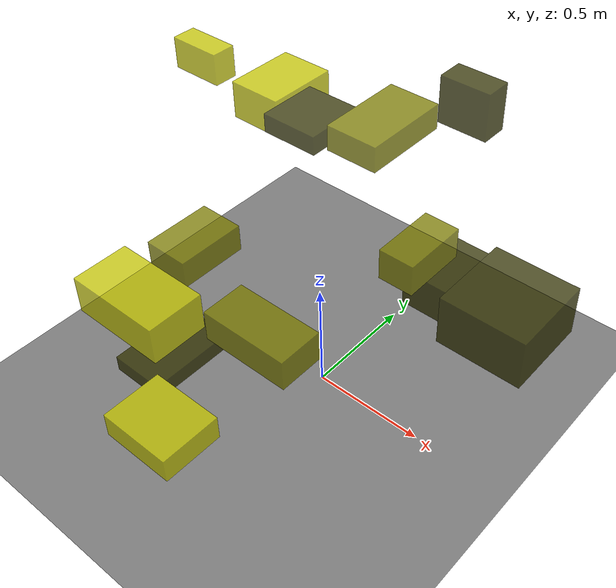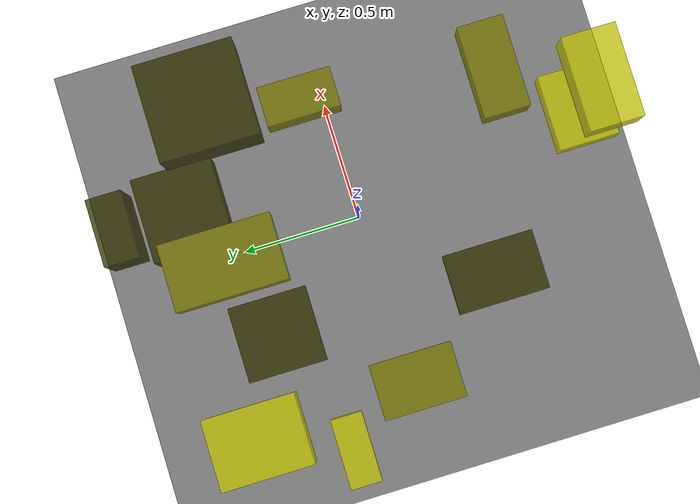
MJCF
<?xml version="1.0"?>
<mujoco model="obstacle_scene">
  <compiler angle="radian" coordinate="local"/>
  <option timestep="0.001" gravity="0 0 -9.81"/>

  <asset>
    <material name="obstacle_mat" rgba="0.8 0.8 0.0 0.8"/>
    <material name="ground_mat" rgba="0.5 0.5 0.5 1"/>
  </asset>

  <worldbody>
    <!-- Ground plane -->
    <geom name="ground" type="plane" size="3 3 0.1" material="ground_mat"/>

    <!-- Obstacles -->
    <body name="obstacle_0" pos="0.102467 0.836821 1.023220">
      <geom name="obs_0" type="box" size="0.119326 0.062277 0.111617" rgba="0.2 0.2 0.0 0.8"/>
    </body>
    <body name="obstacle_1" pos="0.392486 0.100251 0.859463">
      <geom name="obs_1" type="box" size="0.073506 0.136259 0.065727" rgba="0.5 0.5 0.0 0.8"/>
    </body>
    <body name="obstacle_2" pos="0.105641 -0.900532 0.612705">
      <geom name="obs_2" type="box" size="0.145310 0.115393 0.049272" rgba="0.8 0.8 0.0 0.8"/>
    </body>
    <body name="obstacle_3" pos="-0.395561 -0.457098 0.262602">
      <geom name="obs_3" type="box" size="0.122322 0.186117 0.035501" rgba="0.2 0.2 0.0 0.8"/>
    </body>
    <body name="obstacle_4" pos="-0.715459 -0.024690 0.369067">
      <geom name="obs_4" type="box" size="0.111216 0.166108 0.067197" rgba="0.5 0.5 0.0 0.8"/>
    </body>
    <body name="obstacle_5" pos="-0.740775 0.590338 0.848936">
      <geom name="obs_5" type="box" size="0.130444 0.170942 0.091220" rgba="0.8 0.8 0.0 0.8"/>
    </body>
    <body name="obstacle_6" pos="0.580057 0.484536 0.377545">
      <geom name="obs_6" type="box" size="0.199098 0.202780 0.121630" rgba="0.2 0.2 0.0 0.8"/>
    </body>
    <body name="obstacle_7" pos="0.285665 -0.592381 0.913066">
      <geom name="obs_7" type="box" size="0.170066 0.084301 0.059549" rgba="0.5 0.5 0.0 0.8"/>
    </body>
    <body name="obstacle_8" pos="0.101201 -0.892297 1.164621">
      <geom name="obs_8" type="box" size="0.166162 0.094757 0.064854" rgba="0.8 0.8 0.0 0.8"/>
    </body>
    <body name="obstacle_9" pos="-0.399229 0.413357 0.940257">
      <geom name="obs_9" type="box" size="0.135162 0.140584 0.043747" rgba="0.2 0.2 0.0 0.8"/>
    </body>
    <body name="obstacle_10" pos="-0.106645 0.519611 0.976115">
      <geom name="obs_10" type="box" size="0.121625 0.203928 0.059283" rgba="0.5 0.5 0.0 0.8"/>
    </body>
    <body name="obstacle_11" pos="-0.849815 0.260820 1.139298">
      <geom name="obs_11" type="box" size="0.118243 0.053242 0.070215" rgba="0.8 0.8 0.0 0.8"/>
    </body>
    <body name="obstacle_12" pos="0.210941 0.677960 0.194826">
      <geom name="obs_12" type="box" size="0.175224 0.166582 0.095332" rgba="0.2 0.2 0.0 0.8"/>
    </body>
  </worldbody>
</mujoco>
